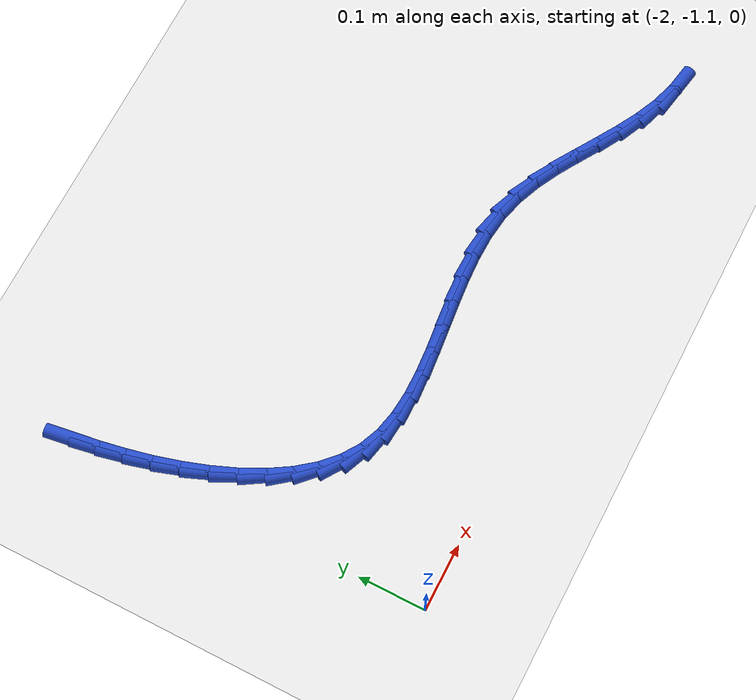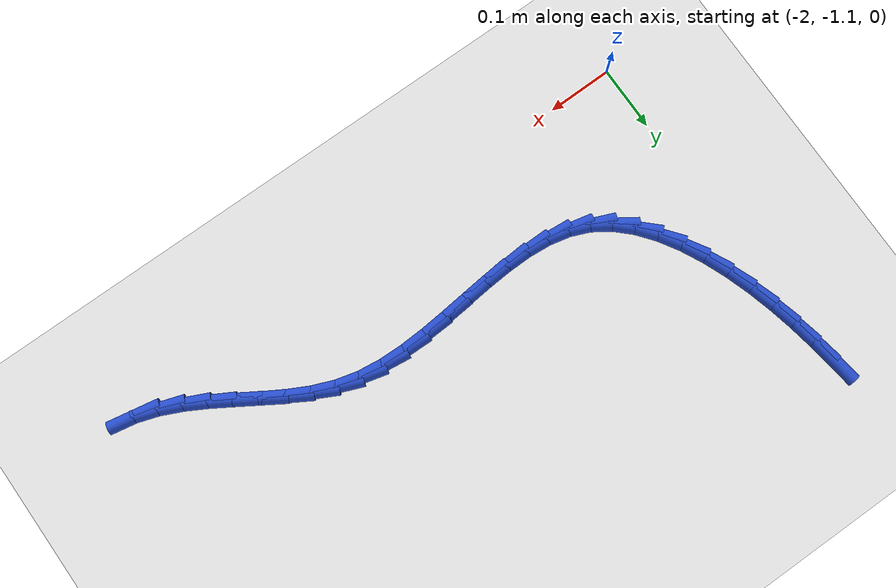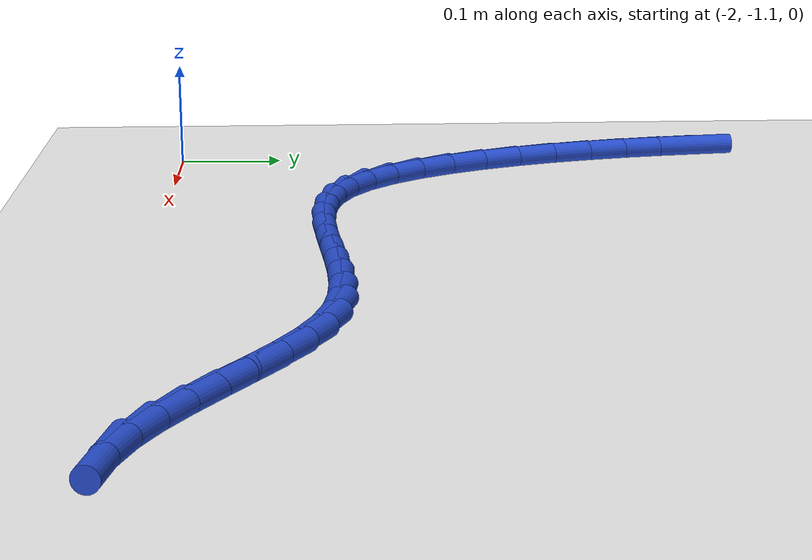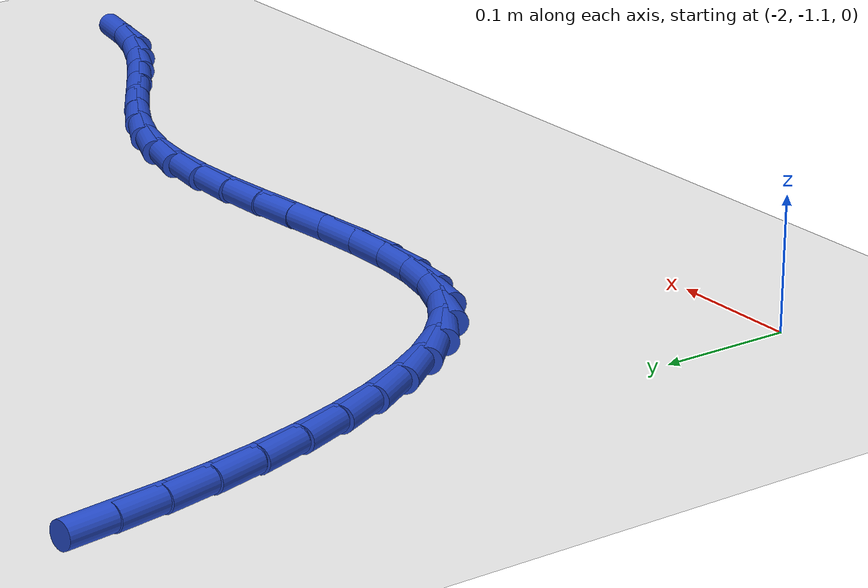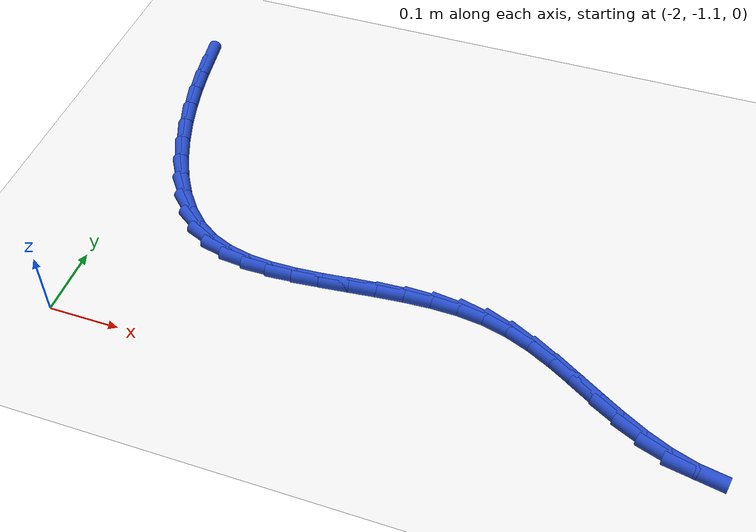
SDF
<sdf version="1.6">
 <world name="default">
  <model name="ground_plane">
   <static>1</static>
   <link name="link">
    <collision name="collision">
     <geometry><plane><normal>0 0 1</normal><size>100 100</size></plane></geometry>
     <surface><friction><ode><mu>100</mu><mu2>50</mu2></ode></friction></surface>
    </collision>
    <visual name="visual">
     <cast_shadows>0</cast_shadows>
     <geometry><plane><normal>0 0 1</normal><size>100 100</size></plane></geometry>
     <material>
      <script><uri>file://media/materials/scripts/gazebo.material</uri><name>Gazebo/WhiteGlow</name></script>
     </material>
    </visual>
   </link>
  </model>
  <model name="line">
   <link name="link_111">
    <pose>-2.0100727194481673 -0.5675953842045067 0.01 0 1.57 -1.4292507623796378</pose>
    <collision name="collision">
     <geometry><cylinder><radius>0.01</radius><length>0.08</length></cylinder></geometry>
    </collision>
    <visual name="visual">
     <material>
      <script><name>Gazebo/Blue</name><uri>file://media/materials/scripts/gazebo.material</uri></script>
     </material>
     <geometry><cylinder><radius>0.01</radius><length>0.08</length></cylinder></geometry>
    </visual>
   </link>
   <link name="link_112">
    <pose>-2.0048206673274453 -0.604452278956455 0.01 0 1.57 -1.3920097791234198</pose>
    <collision name="collision">
     <geometry><cylinder><radius>0.01</radius><length>0.08</length></cylinder></geometry>
    </collision>
    <visual name="visual">
     <material>
      <script><name>Gazebo/Blue</name><uri>file://media/materials/scripts/gazebo.material</uri></script>
     </material>
     <geometry><cylinder><radius>0.01</radius><length>0.08</length></cylinder></geometry>
    </visual>
   </link>
   <link name="link_113">
    <pose>-1.9980614310744726 -0.641854776925247 0.01 0 1.57 -1.349899255826871</pose>
    <collision name="collision">
     <geometry><cylinder><radius>0.01</radius><length>0.08</length></cylinder></geometry>
    </collision>
    <visual name="visual">
     <material>
      <script><name>Gazebo/Blue</name><uri>file://media/materials/scripts/gazebo.material</uri></script>
     </material>
     <geometry><cylinder><radius>0.01</radius><length>0.08</length></cylinder></geometry>
    </visual>
   </link>
   <link name="link_114">
    <pose>-1.9895288353911884 -0.6798514689243372 0.01 0 1.57 -1.3029736236898608</pose>
    <collision name="collision">
     <geometry><cylinder><radius>0.01</radius><length>0.08</length></cylinder></geometry>
    </collision>
    <visual name="visual">
     <material>
      <script><name>Gazebo/Blue</name><uri>file://media/materials/scripts/gazebo.material</uri></script>
     </material>
     <geometry><cylinder><radius>0.01</radius><length>0.08</length></cylinder></geometry>
    </visual>
   </link>
   <link name="link_115">
    <pose>-1.9790363417707384 -0.7180872628580203 0.01 0 1.57 -1.2493196316783055</pose>
    <collision name="collision">
     <geometry><cylinder><radius>0.01</radius><length>0.08</length></cylinder></geometry>
    </collision>
    <visual name="visual">
     <material>
      <script><name>Gazebo/Blue</name><uri>file://media/materials/scripts/gazebo.material</uri></script>
     </material>
     <geometry><cylinder><radius>0.01</radius><length>0.08</length></cylinder></geometry>
    </visual>
   </link>
   <link name="link_116">
    <pose>-1.9664788962222512 -0.7557940175113866 0.01 0 1.57 -1.186330341392041</pose>
    <collision name="collision">
     <geometry><cylinder><radius>0.01</radius><length>0.08</length></cylinder></geometry>
    </collision>
    <visual name="visual">
     <material>
      <script><name>Gazebo/Blue</name><uri>file://media/materials/scripts/gazebo.material</uri></script>
     </material>
     <geometry><cylinder><radius>0.01</radius><length>0.08</length></cylinder></geometry>
    </visual>
   </link>
   <link name="link_117">
    <pose>-1.9517551355855294 -0.7921848826627848 0.01 0 1.57 -1.1107160264776177</pose>
    <collision name="collision">
     <geometry><cylinder><radius>0.01</radius><length>0.08</length></cylinder></geometry>
    </collision>
    <visual name="visual">
     <material>
      <script><name>Gazebo/Blue</name><uri>file://media/materials/scripts/gazebo.material</uri></script>
     </material>
     <geometry><cylinder><radius>0.01</radius><length>0.08</length></cylinder></geometry>
    </visual>
   </link>
   <link name="link_118">
    <pose>-1.934763696700376 -0.826473008090563 0.01 0 1.57 -1.0182569703433069</pose>
    <collision name="collision">
     <geometry><cylinder><radius>0.01</radius><length>0.08</length></cylinder></geometry>
    </collision>
    <visual name="visual">
     <material>
      <script><name>Gazebo/Blue</name><uri>file://media/materials/scripts/gazebo.material</uri></script>
     </material>
     <geometry><cylinder><radius>0.01</radius><length>0.08</length></cylinder></geometry>
    </visual>
   </link>
   <link name="link_119">
    <pose>-1.915403216406592 -0.8578715435730712 0.01 0 1.57 -0.9037298504962327</pose>
    <collision name="collision">
     <geometry><cylinder><radius>0.01</radius><length>0.08</length></cylinder></geometry>
    </collision>
    <visual name="visual">
     <material>
      <script><name>Gazebo/Blue</name><uri>file://media/materials/scripts/gazebo.material</uri></script>
     </material>
     <geometry><cylinder><radius>0.01</radius><length>0.08</length></cylinder></geometry>
    </visual>
   </link>
   <link name="link_120">
    <pose>-1.8935723315439799 -0.8855936388886574 0.01 0 1.57 -0.7614033425975281</pose>
    <collision name="collision">
     <geometry><cylinder><radius>0.01</radius><length>0.08</length></cylinder></geometry>
    </collision>
    <visual name="visual">
     <material>
      <script><name>Gazebo/Blue</name><uri>file://media/materials/scripts/gazebo.material</uri></script>
     </material>
     <geometry><cylinder><radius>0.01</radius><length>0.08</length></cylinder></geometry>
    </visual>
   </link>
   <link name="link_121">
    <pose>-1.8691696789523429 -0.9088524438156704 0.01 0 1.57 -0.5869315616518678</pose>
    <collision name="collision">
     <geometry><cylinder><radius>0.01</radius><length>0.08</length></cylinder></geometry>
    </collision>
    <visual name="visual">
     <material>
      <script><name>Gazebo/Blue</name><uri>file://media/materials/scripts/gazebo.material</uri></script>
     </material>
     <geometry><cylinder><radius>0.01</radius><length>0.08</length></cylinder></geometry>
    </visual>
   </link>
   <link name="link_122">
    <pose>-1.842093895471483 -0.9268611081324587 0.01 0 1.57 -0.3893245377032864</pose>
    <collision name="collision">
     <geometry><cylinder><radius>0.01</radius><length>0.08</length></cylinder></geometry>
    </collision>
    <visual name="visual">
     <material>
      <script><name>Gazebo/Blue</name><uri>file://media/materials/scripts/gazebo.material</uri></script>
     </material>
     <geometry><cylinder><radius>0.01</radius><length>0.08</length></cylinder></geometry>
    </visual>
   </link>
   <link name="link_123">
    <pose>-1.8123126556193088 -0.9390793246313438 0.01 0 1.57 -0.21575831331104964</pose>
    <collision name="collision">
     <geometry><cylinder><radius>0.01</radius><length>0.08</length></cylinder></geometry>
    </collision>
    <visual name="visual">
     <material>
      <script><name>Gazebo/Blue</name><uri>file://media/materials/scripts/gazebo.material</uri></script>
     </material>
     <geometry><cylinder><radius>0.01</radius><length>0.08</length></cylinder></geometry>
    </visual>
   </link>
   <link name="link_124">
    <pose>-1.780120712089222 -0.946134827113603 0.01 0 1.57 -0.0835812129890067</pose>
    <collision name="collision">
     <geometry><cylinder><radius>0.01</radius><length>0.08</length></cylinder></geometry>
    </collision>
    <visual name="visual">
     <material>
      <script><name>Gazebo/Blue</name><uri>file://media/materials/scripts/gazebo.material</uri></script>
     </material>
     <geometry><cylinder><radius>0.01</radius><length>0.08</length></cylinder></geometry>
    </visual>
   </link>
   <link name="link_125">
    <pose>-1.745909582970606 -0.9490009118766343 0.01 0 1.57 0.009765207491435265</pose>
    <collision name="collision">
     <geometry><cylinder><radius>0.01</radius><length>0.08</length></cylinder></geometry>
    </collision>
    <visual name="visual">
     <material>
      <script><name>Gazebo/Blue</name><uri>file://media/materials/scripts/gazebo.material</uri></script>
     </material>
     <geometry><cylinder><radius>0.01</radius><length>0.08</length></cylinder></geometry>
    </visual>
   </link>
   <link name="link_126">
    <pose>-1.7100708010238046 -0.9486509276098638 0.01 0 1.57 0.06981786476516166</pose>
    <collision name="collision">
     <geometry><cylinder><radius>0.01</radius><length>0.08</length></cylinder></geometry>
    </collision>
    <visual name="visual">
     <material>
      <script><name>Gazebo/Blue</name><uri>file://media/materials/scripts/gazebo.material</uri></script>
     </material>
     <geometry><cylinder><radius>0.01</radius><length>0.08</length></cylinder></geometry>
    </visual>
   </link>
   <link name="link_127">
    <pose>-1.6729958990091647 -0.9460582230027168 0.01 0 1.57 0.10149937880934347</pose>
    <collision name="collision">
     <geometry><cylinder><radius>0.01</radius><length>0.08</length></cylinder></geometry>
    </collision>
    <visual name="visual">
     <material>
      <script><name>Gazebo/Blue</name><uri>file://media/materials/scripts/gazebo.material</uri></script>
     </material>
     <geometry><cylinder><radius>0.01</radius><length>0.08</length></cylinder></geometry>
    </visual>
   </link>
   <link name="link_128">
    <pose>-1.6350764096870323 -0.9421961467446194 0.01 0 1.57 0.10794014339401387</pose>
    <collision name="collision">
     <geometry><cylinder><radius>0.01</radius><length>0.08</length></cylinder></geometry>
    </collision>
    <visual name="visual">
     <material>
      <script><name>Gazebo/Blue</name><uri>file://media/materials/scripts/gazebo.material</uri></script>
     </material>
     <geometry><cylinder><radius>0.01</radius><length>0.08</length></cylinder></geometry>
    </visual>
   </link>
   <link name="link_129">
    <pose>-1.5967038658177533 -0.9380380475249969 0.01 0 1.57 0.09031840833900273</pose>
    <collision name="collision">
     <geometry><cylinder><radius>0.01</radius><length>0.08</length></cylinder></geometry>
    </collision>
    <visual name="visual">
     <material>
      <script><name>Gazebo/Blue</name><uri>file://media/materials/scripts/gazebo.material</uri></script>
     </material>
     <geometry><cylinder><radius>0.01</radius><length>0.08</length></cylinder></geometry>
    </visual>
   </link>
   <link name="link_130">
    <pose>-1.5582698001616744 -0.9345572740332755 0.01 0 1.57 0.04799210530348317</pose>
    <collision name="collision">
     <geometry><cylinder><radius>0.01</radius><length>0.08</length></cylinder></geometry>
    </collision>
    <visual name="visual">
     <material>
      <script><name>Gazebo/Blue</name><uri>file://media/materials/scripts/gazebo.material</uri></script>
     </material>
     <geometry><cylinder><radius>0.01</radius><length>0.08</length></cylinder></geometry>
    </visual>
   </link>
   <link name="link_131">
    <pose>-1.520165745479141 -0.9327271749588804 0.01 0 1.57 -0.021234654362515655</pose>
    <collision name="collision">
     <geometry><cylinder><radius>0.01</radius><length>0.08</length></cylinder></geometry>
    </collision>
    <visual name="visual">
     <material>
      <script><name>Gazebo/Blue</name><uri>file://media/materials/scripts/gazebo.material</uri></script>
     </material>
     <geometry><cylinder><radius>0.01</radius><length>0.08</length></cylinder></geometry>
    </visual>
   </link>
   <link name="link_132">
    <pose>-1.4827832345305008 -0.9335210989912379 0.01 0 1.57 -0.12048782553246615</pose>
    <collision name="collision">
     <geometry><cylinder><radius>0.01</radius><length>0.08</length></cylinder></geometry>
    </collision>
    <visual name="visual">
     <material>
      <script><name>Gazebo/Blue</name><uri>file://media/materials/scripts/gazebo.material</uri></script>
     </material>
     <geometry><cylinder><radius>0.01</radius><length>0.08</length></cylinder></geometry>
    </visual>
   </link>
   <link name="link_133">
    <pose>-1.4465138000760969 -0.9379123948197731 0.01 0 1.57 -0.2507426487612593</pose>
    <collision name="collision">
     <geometry><cylinder><radius>0.01</radius><length>0.08</length></cylinder></geometry>
    </collision>
    <visual name="visual">
     <material>
      <script><name>Gazebo/Blue</name><uri>file://media/materials/scripts/gazebo.material</uri></script>
     </material>
     <geometry><cylinder><radius>0.01</radius><length>0.08</length></cylinder></geometry>
    </visual>
   </link>
   <link name="link_134">
    <pose>-1.4117300326590956 -0.9468216704064205 0.01 0 1.57 -0.3793259913846199</pose>
    <collision name="collision">
     <geometry><cylinder><radius>0.01</radius><length>0.08</length></cylinder></geometry>
    </collision>
    <visual name="visual">
     <material>
      <script><name>Gazebo/Blue</name><uri>file://media/materials/scripts/gazebo.material</uri></script>
     </material>
     <geometry><cylinder><radius>0.01</radius><length>0.08</length></cylinder></geometry>
    </visual>
   </link>
   <link name="link_135">
    <pose>-1.3784203728316935 -0.9600999466740343 0.01 0 1.57 -0.4735466110985174</pose>
    <collision name="collision">
     <geometry><cylinder><radius>0.01</radius><length>0.08</length></cylinder></geometry>
    </collision>
    <visual name="visual">
     <material>
      <script><name>Gazebo/Blue</name><uri>file://media/materials/scripts/gazebo.material</uri></script>
     </material>
     <geometry><cylinder><radius>0.01</radius><length>0.08</length></cylinder></geometry>
    </visual>
   </link>
   <link name="link_136">
    <pose>-1.346215724975582 -0.9766027582433242 0.01 0 1.57 -0.5323364578713641</pose>
    <collision name="collision">
     <geometry><cylinder><radius>0.01</radius><length>0.08</length></cylinder></geometry>
    </collision>
    <visual name="visual">
     <material>
      <script><name>Gazebo/Blue</name><uri>file://media/materials/scripts/gazebo.material</uri></script>
     </material>
     <geometry><cylinder><radius>0.01</radius><length>0.08</length></cylinder></geometry>
    </visual>
   </link>
   <link name="link_137">
    <pose>-1.3147333826219556 -0.9951477431070569 0.01 0 1.57 -0.5572261383324537</pose>
    <collision name="collision">
     <geometry><cylinder><radius>0.01</radius><length>0.08</length></cylinder></geometry>
    </collision>
    <visual name="visual">
     <material>
      <script><name>Gazebo/Blue</name><uri>file://media/materials/scripts/gazebo.material</uri></script>
     </material>
     <geometry><cylinder><radius>0.01</radius><length>0.08</length></cylinder></geometry>
    </visual>
   </link>
   <link name="link_138">
    <pose>-1.2835906393020096 -1.0145525392579993 0.01 0 1.57 -0.5491147955095097</pose>
    <collision name="collision">
     <geometry><cylinder><radius>0.01</radius><length>0.08</length></cylinder></geometry>
    </collision>
    <visual name="visual">
     <material>
      <script><name>Gazebo/Blue</name><uri>file://media/materials/scripts/gazebo.material</uri></script>
     </material>
     <geometry><cylinder><radius>0.01</radius><length>0.08</length></cylinder></geometry>
    </visual>
   </link>
   <link name="link_139">
    <pose>-1.2524047885469387 -1.0336347846889171 0.01 0 1.57 -0.5074681985929019</pose>
    <collision name="collision">
     <geometry><cylinder><radius>0.01</radius><length>0.08</length></cylinder></geometry>
    </collision>
    <visual name="visual">
     <material>
      <script><name>Gazebo/Blue</name><uri>file://media/materials/scripts/gazebo.material</uri></script>
     </material>
     <geometry><cylinder><radius>0.01</radius><length>0.08</length></cylinder></geometry>
    </visual>
   </link>
   <link name="link_140">
    <pose>-1.2207931238879364 -1.0512121173925777 0.01 0 1.57 -0.43054726192087694</pose>
    <collision name="collision">
     <geometry><cylinder><radius>0.01</radius><length>0.08</length></cylinder></geometry>
    </collision>
    <visual name="visual">
     <material>
      <script><name>Gazebo/Blue</name><uri>file://media/materials/scripts/gazebo.material</uri></script>
     </material>
     <geometry><cylinder><radius>0.01</radius><length>0.08</length></cylinder></geometry>
    </visual>
   </link>
   <link name="link_141">
    <pose>-1.1883729388561979 -1.0661021753617477 0.01 0 1.57 -0.3168500660267353</pose>
    <collision name="collision">
     <geometry><cylinder><radius>0.01</radius><length>0.08</length></cylinder></geometry>
    </collision>
    <visual name="visual">
     <material>
      <script><name>Gazebo/Blue</name><uri>file://media/materials/scripts/gazebo.material</uri></script>
     </material>
     <geometry><cylinder><radius>0.01</radius><length>0.08</length></cylinder></geometry>
    </visual>
   </link>
   <link name="link_142">
    <pose>-1.154761824078034 -1.0771231652039266 0.01 0 1.57 -0.17976257731145376</pose>
    <collision name="collision">
     <geometry><cylinder><radius>0.01</radius><length>0.08</length></cylinder></geometry>
    </collision>
    <visual name="visual">
     <material>
      <script><name>Gazebo/Blue</name><uri>file://media/materials/scripts/gazebo.material</uri></script>
     </material>
     <geometry><cylinder><radius>0.01</radius><length>0.08</length></cylinder></geometry>
    </visual>
   </link>
  </model>
 </world>
</sdf>
